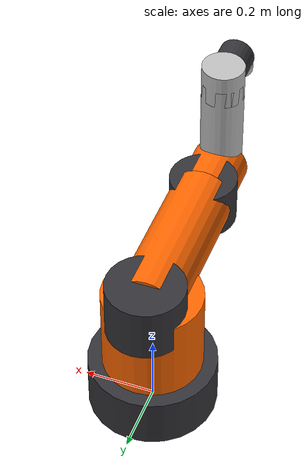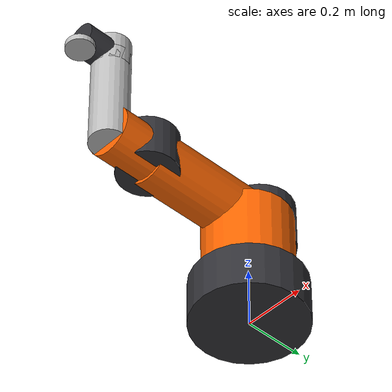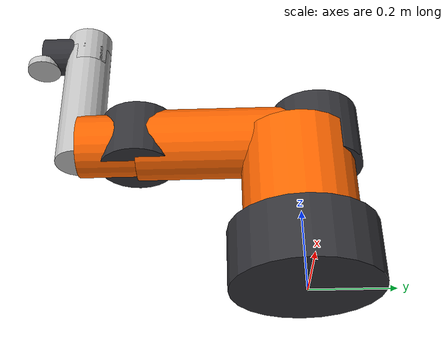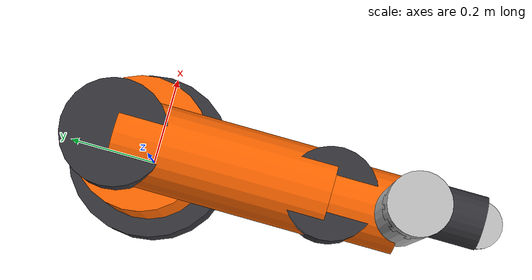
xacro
<?xml version="1.0"?>
<robot xmlns:xacro="http://www.ros.org/wiki/xacro" name="industrial_6dof">

  <!-- Materials -->
  <material name="industrial_orange">
    <color rgba="1.0 0.4 0.0 1.0"/>
  </material>
  <material name="industrial_dark">
    <color rgba="0.2 0.2 0.22 1.0"/>
  </material>
  <material name="industrial_silver">
    <color rgba="0.75 0.75 0.75 1.0"/>
  </material>

  <!-- ======================== CONSTANTS ======================== -->
  <!-- pi is natively built into newer xacro versions -->

  <!-- ======================== LINKS & JOINTS ======================== -->

  <!-- Dummy root link to prevent KDL & Gazebo root inertia errors -->
  <link name="world"/>

  <joint name="fixed_base_joint" type="fixed">
    <parent link="world"/>
    <child link="base_link"/>
    <origin xyz="0 0 0" rpy="0 0 0"/>
  </joint>

  <!-- Base Link (Pedestal) -->
  <link name="base_link">
    <visual>
      <geometry>
        <cylinder length="0.15" radius="0.18"/>
      </geometry>
      <origin xyz="0 0 0.075" rpy="0 0 0"/>
      <material name="industrial_dark"/>
    </visual>
    <collision>
      <geometry>
        <cylinder length="0.15" radius="0.18"/>
      </geometry>
      <origin xyz="0 0 0.075" rpy="0 0 0"/>
    </collision>
    <inertial>
      <mass value="15.0"/>
      <origin xyz="0 0 0.075" rpy="0 0 0"/>
      <inertia ixx="0.2" ixy="0.0" ixz="0.0" iyy="0.2" iyz="0.0" izz="0.4"/>
    </inertial>
  </link>

  <!-- Link 1 (Shoulder Pan) -->
  <link name="link_1">
    <visual>
      <geometry>
        <cylinder length="0.25" radius="0.14"/>
      </geometry>
      <origin xyz="0 0 0.125" rpy="0 0 0"/>
      <material name="industrial_orange"/>
    </visual>
    <collision>
      <geometry>
        <cylinder length="0.25" radius="0.14"/>
      </geometry>
      <origin xyz="0 0 0.125" rpy="0 0 0"/>
    </collision>
    <inertial>
      <mass value="12.0"/>
      <origin xyz="0 0 0.125" rpy="0 0 0"/>
      <inertia ixx="0.15" ixy="0.0" ixz="0.0" iyy="0.15" iyz="0.0" izz="0.1"/>
    </inertial>
  </link>

  <joint name="joint_1" type="revolute">
    <parent link="base_link"/>
    <child link="link_1"/>
    <origin xyz="0 0 0.15" rpy="0 0 0"/>
    <axis xyz="0 0 1"/>
    <limit lower="-2.96" upper="2.96" effort="300" velocity="2.1"/>
    <dynamics damping="10.0" friction="5.0"/>
  </joint>

  <!-- Link 2 (Shoulder Lift / Upper Arm) -->
  <link name="link_2">
    <visual>
      <!-- Main Arm -->
      <geometry>
        <cylinder length="0.45" radius="0.09"/>
      </geometry>
      <origin xyz="0 0 0.225" rpy="0 0 0"/>
      <material name="industrial_orange"/>
    </visual>
    <visual>
      <!-- Shoulder Joint Cap -->
      <geometry>
        <cylinder length="0.16" radius="0.11"/>
      </geometry>
      <origin xyz="0 0 0" rpy="${pi/2} 0 0"/>
      <material name="industrial_dark"/>
    </visual>
    <collision>
      <geometry>
        <cylinder length="0.45" radius="0.09"/>
      </geometry>
      <origin xyz="0 0 0.225" rpy="0 0 0"/>
    </collision>
    <inertial>
      <mass value="10.0"/>
      <origin xyz="0 0 0.225" rpy="0 0 0"/>
      <inertia ixx="0.3" ixy="0.0" ixz="0.0" iyy="0.3" iyz="0.0" izz="0.05"/>
    </inertial>
  </link>

  <joint name="joint_2" type="revolute">
    <parent link="link_1"/>
    <child link="link_2"/>
    <origin xyz="0 0.05 0.25" rpy="${pi/2} 0 0"/> <!-- Rotated so Link 2 extends outwards -->
    <axis xyz="0 0 1"/>
    <limit lower="-2.35" upper="2.35" effort="300" velocity="2.1"/>
    <dynamics damping="10.0" friction="5.0"/>
  </joint>

  <!-- Link 3 (Elbow) -->
  <link name="link_3">
    <visual>
      <!-- Forearm Base -->
      <geometry>
        <cylinder length="0.15" radius="0.08"/>
      </geometry>
      <origin xyz="0 0 0.075" rpy="0 0 0"/>
      <material name="industrial_orange"/>
    </visual>
    <visual>
      <!-- Elbow Joint Cap -->
      <geometry>
        <cylinder length="0.14" radius="0.095"/>
      </geometry>
      <origin xyz="0 0 0" rpy="${pi/2} 0 0"/>
      <material name="industrial_dark"/>
    </visual>
    <collision>
      <geometry>
        <cylinder length="0.15" radius="0.08"/>
      </geometry>
      <origin xyz="0 0 0.075" rpy="0 0 0"/>
    </collision>
    <inertial>
      <mass value="8.0"/>
      <origin xyz="0 0 0.075" rpy="0 0 0"/>
      <inertia ixx="0.05" ixy="0.0" ixz="0.0" iyy="0.05" iyz="0.0" izz="0.03"/>
    </inertial>
  </link>

  <joint name="joint_3" type="revolute">
    <parent link="link_2"/>
    <child link="link_3"/>
    <origin xyz="0 0 0.45" rpy="0 0 0"/>
    <axis xyz="0 0 1"/>
    <limit lower="-2.61" upper="2.61" effort="150" velocity="2.5"/>
    <dynamics damping="5.0" friction="2.0"/>
  </joint>

  <!-- Link 4 (Forearm Roll) -->
  <link name="link_4">
    <visual>
      <geometry>
        <cylinder length="0.35" radius="0.06"/>
      </geometry>
      <origin xyz="0 0 0.175" rpy="0 0 0"/>
      <material name="industrial_silver"/>
    </visual>
    <collision>
      <geometry>
        <cylinder length="0.35" radius="0.06"/>
      </geometry>
      <origin xyz="0 0 0.175" rpy="0 0 0"/>
    </collision>
    <inertial>
      <mass value="5.0"/>
      <origin xyz="0 0 0.175" rpy="0 0 0"/>
      <inertia ixx="0.1" ixy="0.0" ixz="0.0" iyy="0.1" iyz="0.0" izz="0.02"/>
    </inertial>
  </link>

  <joint name="joint_4" type="revolute">
    <parent link="link_3"/>
    <child link="link_4"/>
    <origin xyz="0 -0.05 0.15" rpy="${-pi/2} 0 0"/>
    <axis xyz="0 0 1"/>
    <limit lower="-3.14" upper="3.14" effort="100" velocity="3.0"/>
    <dynamics damping="3.0" friction="1.0"/>
  </joint>

  <!-- Link 5 (Wrist Pitch) -->
  <link name="link_5">
    <visual>
      <geometry>
        <cylinder length="0.12" radius="0.05"/>
      </geometry>
      <origin xyz="0 0 0.06" rpy="0 0 0"/>
      <material name="industrial_dark"/>
    </visual>
    <visual>
      <!-- Wrist Joint Cap -->
      <geometry>
        <cylinder length="0.1" radius="0.06"/>
      </geometry>
      <origin xyz="0 0 0" rpy="${pi/2} 0 0"/>
      <material name="industrial_silver"/>
    </visual>
    <collision>
      <geometry>
        <cylinder length="0.12" radius="0.05"/>
      </geometry>
      <origin xyz="0 0 0.06" rpy="0 0 0"/>
    </collision>
    <inertial>
      <mass value="2.0"/>
      <origin xyz="0 0 0.06" rpy="0 0 0"/>
      <inertia ixx="0.01" ixy="0.0" ixz="0.0" iyy="0.01" iyz="0.0" izz="0.01"/>
    </inertial>
  </link>

  <joint name="joint_5" type="revolute">
    <parent link="link_4"/>
    <child link="link_5"/>
    <origin xyz="0 0 0.35" rpy="${pi/2} 0 0"/>
    <axis xyz="0 0 1"/>
    <limit lower="-2.09" upper="2.09" effort="50" velocity="3.0"/>
    <dynamics damping="1.0" friction="0.5"/>
  </joint>

  <!-- Link 6 (Wrist Roll / Flange) -->
  <link name="link_6">
    <visual>
      <geometry>
        <cylinder length="0.02" radius="0.045"/>
      </geometry>
      <origin xyz="0 0 0.01" rpy="0 0 0"/>
      <material name="industrial_silver"/>
    </visual>
    <collision>
      <geometry>
        <cylinder length="0.02" radius="0.045"/>
      </geometry>
      <origin xyz="0 0 0.01" rpy="0 0 0"/>
    </collision>
    <inertial>
      <mass value="0.5"/>
      <origin xyz="0 0 0.01" rpy="0 0 0"/>
      <inertia ixx="0.001" ixy="0.0" ixz="0.0" iyy="0.001" iyz="0.0" izz="0.001"/>
    </inertial>
  </link>

  <joint name="joint_6" type="revolute">
    <parent link="link_5"/>
    <child link="link_6"/>
    <origin xyz="0 -0.05 0.12" rpy="${-pi/2} 0 0"/>
    <axis xyz="0 0 1"/>
    <limit lower="-6.28" upper="6.28" effort="20" velocity="4.0"/>
    <dynamics damping="0.5" friction="0.1"/>
  </joint>

  <!-- Tool0 -->
  <link name="tool0"/>
  <joint name="joint_6-tool0" type="fixed">
    <parent link="link_6"/>
    <child link="tool0"/>
    <origin xyz="0 0 0.02" rpy="0 0 0"/>
  </joint>

  <!-- ======================== GAZEBO COLORS ======================== -->
  <gazebo reference="base_link"><material>Gazebo/DarkGrey</material></gazebo>
  <gazebo reference="link_1"><material>Gazebo/Orange</material></gazebo>
  <gazebo reference="link_2"><material>Gazebo/Orange</material></gazebo>
  <gazebo reference="link_3"><material>Gazebo/Orange</material></gazebo>
  <gazebo reference="link_4"><material>Gazebo/Grey</material></gazebo>
  <gazebo reference="link_5"><material>Gazebo/DarkGrey</material></gazebo>
  <gazebo reference="link_6"><material>Gazebo/Grey</material></gazebo>

  <!-- ======================== ROS 2 CONTROL ======================== -->
  <ros2_control name="GazeboSystem" type="system">
    <hardware>
      <plugin>gz_ros2_control/GazeboSimSystem</plugin>
    </hardware>
    <joint name="joint_1">
      <command_interface name="position"/>
      <state_interface name="position"/>
      <state_interface name="velocity"/>
    </joint>
    <joint name="joint_2">
      <command_interface name="position"/>
      <state_interface name="position"/>
      <state_interface name="velocity"/>
    </joint>
    <joint name="joint_3">
      <command_interface name="position"/>
      <state_interface name="position"/>
      <state_interface name="velocity"/>
    </joint>
    <joint name="joint_4">
      <command_interface name="position"/>
      <state_interface name="position"/>
      <state_interface name="velocity"/>
    </joint>
    <joint name="joint_5">
      <command_interface name="position"/>
      <state_interface name="position"/>
      <state_interface name="velocity"/>
    </joint>
    <joint name="joint_6">
      <command_interface name="position"/>
      <state_interface name="position"/>
      <state_interface name="velocity"/>
    </joint>
  </ros2_control>

  <gazebo>
    <plugin filename="libgz-sim-joint-trajectory-controller-system.so" name="gz::sim::systems::JointTrajectoryController">
      <topic>/gazebo/joint_trajectory</topic>
    </plugin>
    <plugin filename="libgz-sim-joint-state-publisher-system.so" name="gz::sim::systems::JointStatePublisher">
      <topic>/gazebo/joint_states</topic>
      <joint_name>joint_1</joint_name>
      <joint_name>joint_2</joint_name>
      <joint_name>joint_3</joint_name>
      <joint_name>joint_4</joint_name>
      <joint_name>joint_5</joint_name>
      <joint_name>joint_6</joint_name>
    </plugin>
  </gazebo>

</robot>
